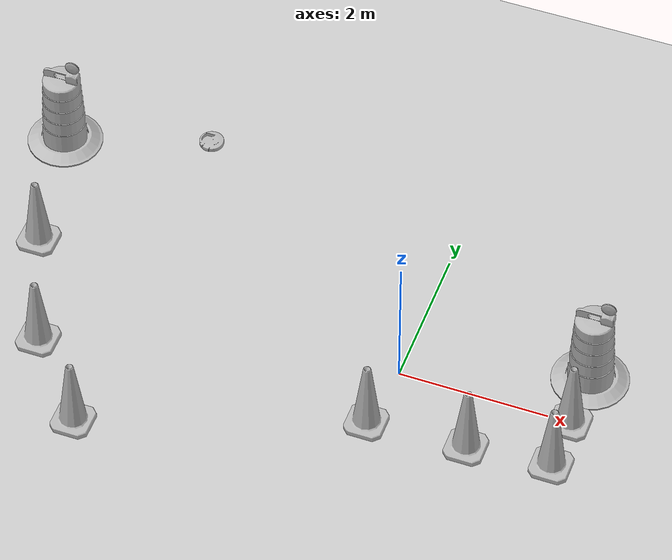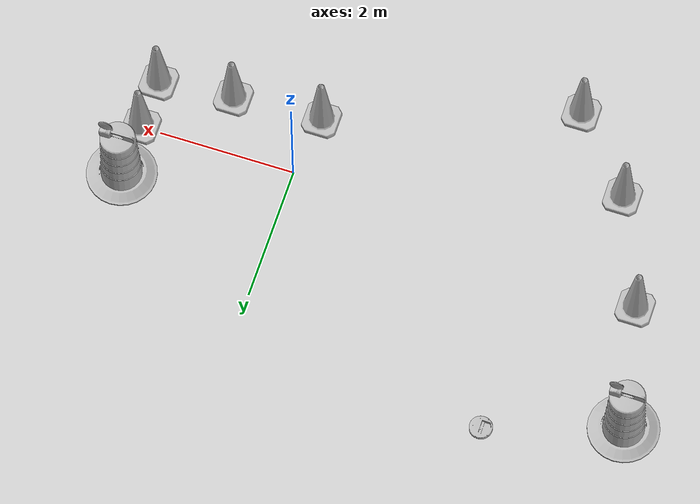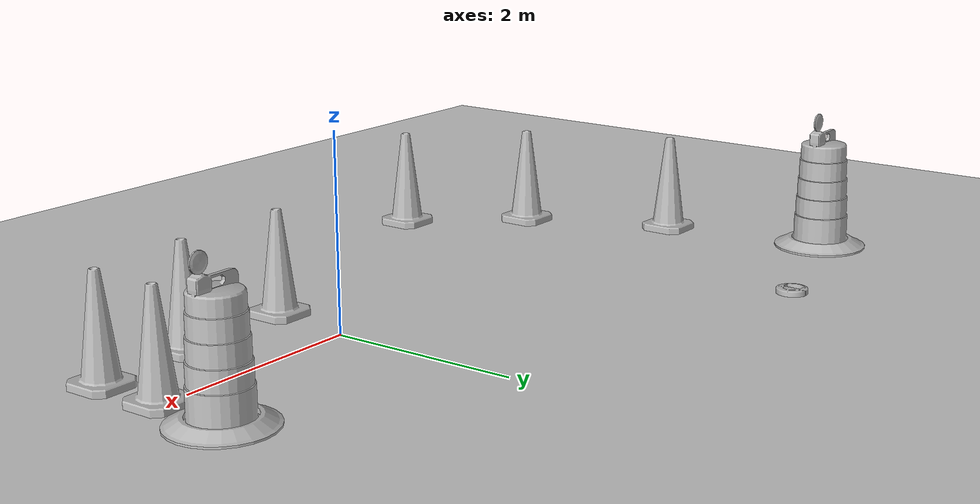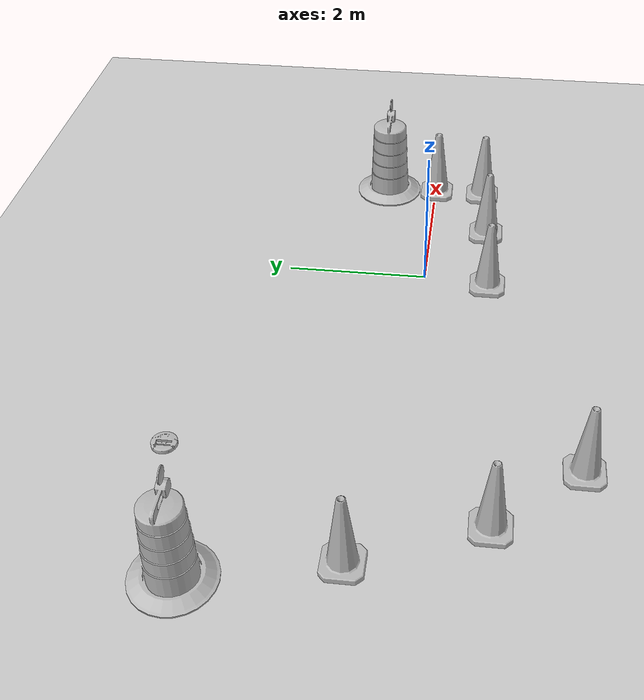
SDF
<sdf version="1.7">
 <world name="default">
  <light name="sun" type="directional">
   <pose>0 0 10 0 -0 0</pose>
   <diffuse>0.8 0.8 0.8 1</diffuse>
   <specular>0.2 0.2 0.2 1</specular>
   <attenuation>
    <range>1000</range>
    <constant>0.9</constant>
    <linear>0.01</linear>
    <quadratic>0.001</quadratic>
   </attenuation>
   <direction>-0.5 0.1 -0.9</direction>
   <spot><inner_angle>0</inner_angle><outer_angle>0</outer_angle><falloff>0</falloff></spot>
  </light>
  <model name="ground_plane">
   <static>1</static>
   <link name="link">
    <collision name="collision">
     <geometry><plane><normal>0 0 1</normal><size>100 100</size></plane></geometry>
     <surface>
      <contact><collide_bitmask>65535</collide_bitmask></contact>
      <friction><ode><mu>100</mu><mu2>50</mu2></ode></friction>
     </surface>
    </collision>
    <visual name="visual">
     <cast_shadows>0</cast_shadows>
     <geometry><plane><normal>0 0 1</normal><size>100 100</size></plane></geometry>
     <material>
      <script><uri>file://media/materials/scripts/gazebo.material</uri><name>Gazebo/Grey</name></script>
     </material>
    </visual>
   </link>
  </model>
  <gravity>0 0 -9.8</gravity>
  <magnetic_field>6e-06 2.3e-05 -4.2e-05</magnetic_field>
  <atmosphere type="adiabatic"/>
  <physics type="ode">
   <max_step_size>0.001</max_step_size>
   <real_time_factor>1</real_time_factor>
   <real_time_update_rate>1000</real_time_update_rate>
  </physics>
  <scene><ambient>0.4 0.4 0.4 1</ambient><background>0.7 0.7 0.7 1</background><shadows>1</shadows></scene>
  <audio><device>default</device></audio>
  <spherical_coordinates>
   <surface_model>EARTH_WGS84</surface_model>
   <latitude_deg>0</latitude_deg>
   <longitude_deg>0</longitude_deg>
   <elevation>0</elevation>
   <heading_deg>0</heading_deg>
  </spherical_coordinates>
  <model name="Construction Cone">
   <link name="link">
    <collision name="collision">
     <geometry>
      <mesh><scale>10 10 10</scale><uri>model://construction_cone/meshes/construction_cone.dae</uri></mesh>
     </geometry>
    </collision>
    <visual name="visual">
     <geometry>
      <mesh><scale>10 10 10</scale><uri>model://construction_cone/meshes/construction_cone.dae</uri></mesh>
     </geometry>
    </visual>
    <inertial>
     <inertia><ixx>1</ixx><ixy>0</ixy><ixz>0</ixz><iyy>1</iyy><iyz>0</iyz><izz>1</izz></inertia>
     <mass>1</mass>
    </inertial>
   </link>
   <pose>-0.118475 -0.911162 -0 0 -0 0</pose>
  </model>
  <model name="Construction Cone_0">
   <link name="link">
    <collision name="collision">
     <geometry>
      <mesh><scale>10 10 10</scale><uri>model://construction_cone/meshes/construction_cone.dae</uri></mesh>
     </geometry>
    </collision>
    <visual name="visual">
     <geometry>
      <mesh><scale>10 10 10</scale><uri>model://construction_cone/meshes/construction_cone.dae</uri></mesh>
     </geometry>
    </visual>
    <inertial>
     <inertia><ixx>1</ixx><ixy>0</ixy><ixz>0</ixz><iyy>1</iyy><iyz>0</iyz><izz>1</izz></inertia>
     <mass>1</mass>
    </inertial>
   </link>
   <pose>1.19393 -0.850876 0 -1e-06 0 0</pose>
  </model>
  <model name="Construction Cone_1">
   <link name="link">
    <collision name="collision">
     <geometry>
      <mesh><scale>10 10 10</scale><uri>model://construction_cone/meshes/construction_cone.dae</uri></mesh>
     </geometry>
    </collision>
    <visual name="visual">
     <geometry>
      <mesh><scale>10 10 10</scale><uri>model://construction_cone/meshes/construction_cone.dae</uri></mesh>
     </geometry>
    </visual>
    <inertial>
     <inertia><ixx>1</ixx><ixy>0</ixy><ixz>0</ixz><iyy>1</iyy><iyz>0</iyz><izz>1</izz></inertia>
     <mass>1</mass>
    </inertial>
   </link>
   <pose>2.2925 -0.75536 -0 0 -0 0</pose>
  </model>
  <model name="Construction Barrel">
   <link name="link">
    <inertial>
     <pose>0 0 0.4 0 -0 0</pose>
     <mass>500</mass>
     <inertia><ixx>51.2096</ixx><iyy>51.2096</iyy><izz>25</izz><ixy>0</ixy><ixz>0</ixz><iyz>0</iyz></inertia>
    </inertial>
    <collision name="collision">
     <geometry><mesh><uri>model://construction_barrel/meshes/construction_barrel.dae</uri></mesh></geometry>
    </collision>
    <visual name="visual">
     <geometry><mesh><uri>model://construction_barrel/meshes/construction_barrel.dae</uri></mesh></geometry>
    </visual>
   </link>
   <pose>2.32251 0.763849 -2e-06 7e-06 -4e-06 -1.5e-05</pose>
  </model>
  <model name="Construction Cone_2">
   <link name="link">
    <collision name="collision">
     <geometry>
      <mesh><scale>10 10 10</scale><uri>model://construction_cone/meshes/construction_cone.dae</uri></mesh>
     </geometry>
    </collision>
    <visual name="visual">
     <geometry>
      <mesh><scale>10 10 10</scale><uri>model://construction_cone/meshes/construction_cone.dae</uri></mesh>
     </geometry>
    </visual>
    <inertial>
     <inertia><ixx>1</ixx><ixy>0</ixy><ixz>0</ixz><iyy>1</iyy><iyz>0</iyz><izz>1</izz></inertia>
     <mass>1</mass>
    </inertial>
   </link>
   <pose>2.30532 -0.017602 -0 0 -0 0</pose>
  </model>
  <model name="create">
   <link name="base">
    <inertial>
     <pose>0.001453 -0.000453 0.029787 0 -0 0</pose>
     <inertia>
      <ixx>0.05864</ixx>
      <ixy>0.000124</ixy>
      <ixz>0.000615</ixz>
      <iyy>0.058786</iyy>
      <iyz>1.4e-05</iyz>
      <izz>1.53244</izz>
     </inertia>
     <mass>2.234</mass>
    </inertial>
    <collision name="base_collision">
     <pose>0 0 0.0478 0 -0 0</pose>
     <geometry><cylinder><radius>0.016495</radius><length>0.061163</length></cylinder></geometry>
    </collision>
    <visual name="base_visual">
     <pose>0 0 0.0478 0 -0 0</pose>
     <geometry><mesh><uri>model://create/meshes/create_body.dae</uri></mesh></geometry>
    </visual>
    <collision name="front_wheel_collision">
     <pose>0.13 0 0.017 -0 1.5707 1.5707</pose>
     <geometry><sphere><radius>0.018</radius></sphere></geometry>
     <surface>
      <friction><ode><mu>0</mu><mu2>0</mu2><fdir1>0 0 0</fdir1><slip1>0</slip1><slip2>0</slip2></ode></friction>
     </surface>
    </collision>
    <visual name="front_wheel_visual">
     <pose>0.13 0 0.017 -0 1.5707 1.5707</pose>
     <geometry><sphere><radius>0.009</radius></sphere></geometry>
    </visual>
    <collision name="rear_wheel_collision">
     <pose>-0.13 0 0.017 -0 1.5707 1.5707</pose>
     <geometry><sphere><radius>0.015</radius></sphere></geometry>
     <surface>
      <friction><ode><mu>0</mu><mu2>0</mu2><fdir1>0 0 0</fdir1><slip1>0</slip1><slip2>0</slip2></ode></friction>
     </surface>
    </collision>
    <visual name="rear_wheel_visual">
     <pose>-0.13 0 0.017 -0 1.5707 1.5707</pose>
     <geometry><sphere><radius>0.0075</radius></sphere></geometry>
    </visual>
    <sensor name="left_cliff_sensor" type="ray">
     <pose>0.07 0.14 0.027 0 1.57079 0</pose>
     <ray>
      <scan>
       <horizontal>
        <samples>1</samples>
        <resolution>1</resolution>
        <min_angle>0</min_angle>
        <max_angle>0</max_angle>
       </horizontal>
       <vertical><samples>1</samples><min_angle>0</min_angle><max_angle>0</max_angle></vertical>
      </scan>
      <range><min>0.01</min><max>0.04</max><resolution>0.1</resolution></range>
     </ray>
    </sensor>
    <sensor name="leftfront_cliff_sensor" type="ray">
     <pose>0.15 0.04 0.027 0 1.57079 0</pose>
     <ray>
      <scan>
       <horizontal>
        <samples>1</samples>
        <resolution>1</resolution>
        <min_angle>0</min_angle>
        <max_angle>0</max_angle>
       </horizontal>
       <vertical><samples>1</samples><min_angle>0</min_angle><max_angle>0</max_angle></vertical>
      </scan>
      <range><min>0.01</min><max>0.04</max><resolution>0.1</resolution></range>
     </ray>
    </sensor>
    <sensor name="right_cliff_sensor" type="ray">
     <pose>0.07 -0.14 0.027 0 1.57079 0</pose>
     <ray>
      <scan>
       <horizontal>
        <samples>1</samples>
        <resolution>1</resolution>
        <min_angle>0</min_angle>
        <max_angle>0</max_angle>
       </horizontal>
       <vertical><samples>1</samples><min_angle>0</min_angle><max_angle>0</max_angle></vertical>
      </scan>
      <range><min>0.01</min><max>0.04</max><resolution>0.1</resolution></range>
     </ray>
    </sensor>
    <sensor name="rightfront_cliff_sensor" type="ray">
     <pose>0.15 -0.04 0.027 0 1.57079 0</pose>
     <ray>
      <scan>
       <horizontal>
        <samples>1</samples>
        <resolution>1</resolution>
        <min_angle>0</min_angle>
        <max_angle>0</max_angle>
       </horizontal>
       <vertical><samples>1</samples><min_angle>0</min_angle><max_angle>0</max_angle></vertical>
      </scan>
      <range><min>0.01</min><max>0.04</max><resolution>0.1</resolution></range>
     </ray>
    </sensor>
    <sensor name="wall_sensor" type="ray">
     <pose>0.09 -0.12 0.059 0 0 -1</pose>
     <ray>
      <scan>
       <horizontal>
        <samples>1</samples>
        <resolution>1</resolution>
        <min_angle>0</min_angle>
        <max_angle>0</max_angle>
       </horizontal>
       <vertical><samples>1</samples><min_angle>0</min_angle><max_angle>0</max_angle></vertical>
      </scan>
      <range><min>0.016</min><max>0.04</max><resolution>0.1</resolution></range>
     </ray>
    </sensor>
   </link>
   <link name="left_wheel">
    <pose>0 0.13 0.032 0 -0 0</pose>
    <inertial>
     <inertia><ixx>0.001</ixx><ixy>0</ixy><ixz>0</ixz><iyy>0.001</iyy><iyz>0</iyz><izz>0.001</izz></inertia>
     <mass>0.01</mass>
    </inertial>
    <collision name="collision">
     <pose>0 0 0 -0 1.5707 1.5707</pose>
     <geometry><cylinder><radius>0.033</radius><length>0.023</length></cylinder></geometry>
     <surface>
      <friction><ode><mu>10</mu><mu2>10</mu2><fdir1>0 0 0</fdir1><slip1>0</slip1><slip2>0</slip2></ode></friction>
     </surface>
    </collision>
    <visual name="visual">
     <pose>0 0 0 -0 1.5707 1.5707</pose>
     <geometry><cylinder><radius>0.033</radius><length>0.023</length></cylinder></geometry>
    </visual>
   </link>
   <link name="right_wheel">
    <pose>0 -0.13 0.032 0 -0 0</pose>
    <inertial>
     <inertia><ixx>0.001</ixx><ixy>0</ixy><ixz>0</ixz><iyy>0.001</iyy><iyz>0</iyz><izz>0.001</izz></inertia>
     <mass>0.01</mass>
    </inertial>
    <collision name="collision">
     <pose>0 0 0 -0 1.5707 1.5707</pose>
     <geometry><cylinder><radius>0.033</radius><length>0.023</length></cylinder></geometry>
     <surface>
      <friction><ode><mu>10</mu><mu2>10</mu2><fdir1>0 0 0</fdir1><slip1>0</slip1><slip2>0</slip2></ode></friction>
     </surface>
    </collision>
    <visual name="visual">
     <pose>0 0 0 -0 1.5707 1.5707</pose>
     <geometry><cylinder><radius>0.033</radius><length>0.023</length></cylinder></geometry>
    </visual>
   </link>
   <joint name="left_wheel" type="revolute">
    <parent>base</parent>
    <child>left_wheel</child>
    <axis>
     <xyz expressed_in="__model__">0 1 0</xyz>
     <limit><lower>-1e+16</lower><upper>1e+16</upper></limit>
     <dynamics><spring_reference>0</spring_reference><spring_stiffness>0</spring_stiffness></dynamics>
    </axis>
   </joint>
   <joint name="right_wheel" type="revolute">
    <parent>base</parent>
    <child>right_wheel</child>
    <axis>
     <xyz expressed_in="__model__">0 1 0</xyz>
     <limit><lower>-1e+16</lower><upper>1e+16</upper></limit>
     <dynamics><spring_reference>0</spring_reference><spring_stiffness>0</spring_stiffness></dynamics>
    </axis>
   </joint>
   <pose>-3.71392 2.90525 0.000937 -7.4e-05 -0.000606 -0.006266</pose>
  </model>
  <model name="Construction Cone_3">
   <link name="link">
    <collision name="collision">
     <geometry>
      <mesh><scale>10 10 10</scale><uri>model://construction_cone/meshes/construction_cone.dae</uri></mesh>
     </geometry>
    </collision>
    <visual name="visual">
     <geometry>
      <mesh><scale>10 10 10</scale><uri>model://construction_cone/meshes/construction_cone.dae</uri></mesh>
     </geometry>
    </visual>
    <inertial>
     <inertia><ixx>1</ixx><ixy>0</ixy><ixz>0</ixz><iyy>1</iyy><iyz>0</iyz><izz>1</izz></inertia>
     <mass>1</mass>
    </inertial>
   </link>
   <pose>-4.55962 -1.08203 -0 0 -0 0</pose>
  </model>
  <model name="Construction Cone_4">
   <link name="link">
    <collision name="collision">
     <geometry>
      <mesh><scale>10 10 10</scale><uri>model://construction_cone/meshes/construction_cone.dae</uri></mesh>
     </geometry>
    </collision>
    <visual name="visual">
     <geometry>
      <mesh><scale>10 10 10</scale><uri>model://construction_cone/meshes/construction_cone.dae</uri></mesh>
     </geometry>
    </visual>
    <inertial>
     <inertia><ixx>1</ixx><ixy>0</ixy><ixz>0</ixz><iyy>1</iyy><iyz>0</iyz><izz>1</izz></inertia>
     <mass>1</mass>
    </inertial>
   </link>
   <pose>-5.22438 0.50164 0 -0 -0 -0</pose>
  </model>
  <model name="Construction Cone_5">
   <link name="link">
    <collision name="collision">
     <geometry>
      <mesh><scale>10 10 10</scale><uri>model://construction_cone/meshes/construction_cone.dae</uri></mesh>
     </geometry>
    </collision>
    <visual name="visual">
     <geometry>
      <mesh><scale>10 10 10</scale><uri>model://construction_cone/meshes/construction_cone.dae</uri></mesh>
     </geometry>
    </visual>
    <inertial>
     <inertia><ixx>1</ixx><ixy>0</ixy><ixz>0</ixz><iyy>1</iyy><iyz>0</iyz><izz>1</izz></inertia>
     <mass>1</mass>
    </inertial>
   </link>
   <pose>-3.61814 -2.16699 -0 0 -1e-06 0</pose>
  </model>
  <model name="Construction Barrel_0">
   <link name="link">
    <inertial>
     <pose>0 0 0.4 0 -0 0</pose>
     <mass>500</mass>
     <inertia><ixx>51.2096</ixx><iyy>51.2096</iyy><izz>25</izz><ixy>0</ixy><ixz>0</ixz><iyz>0</iyz></inertia>
    </inertial>
    <collision name="collision">
     <geometry><mesh><uri>model://construction_barrel/meshes/construction_barrel.dae</uri></mesh></geometry>
    </collision>
    <visual name="visual">
     <geometry><mesh><uri>model://construction_barrel/meshes/construction_barrel.dae</uri></mesh></geometry>
    </visual>
   </link>
   <pose>-5.59549 2.28972 -2e-06 7e-06 -4e-06 -4e-06</pose>
  </model>
 </world>
</sdf>
